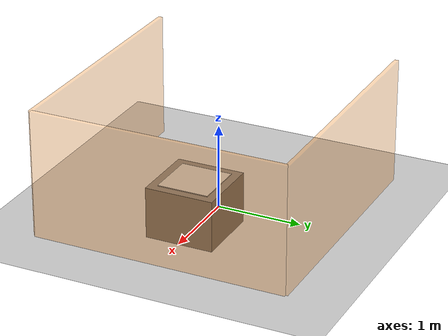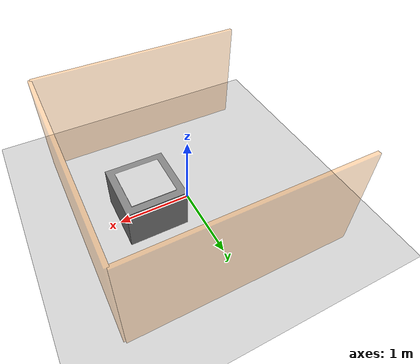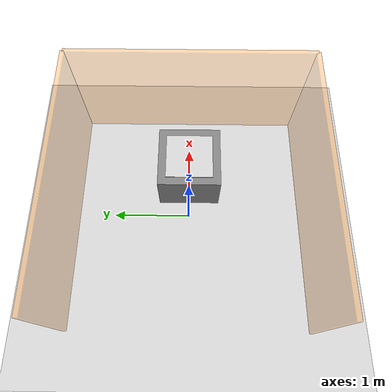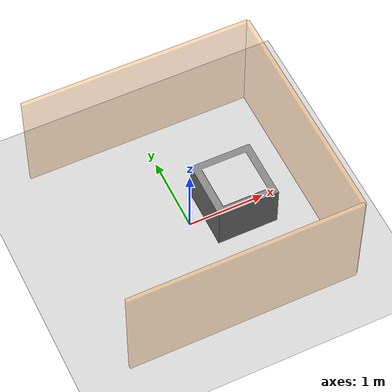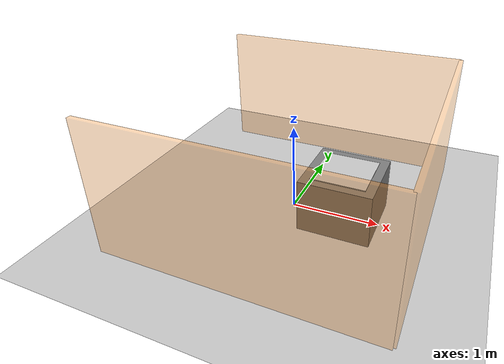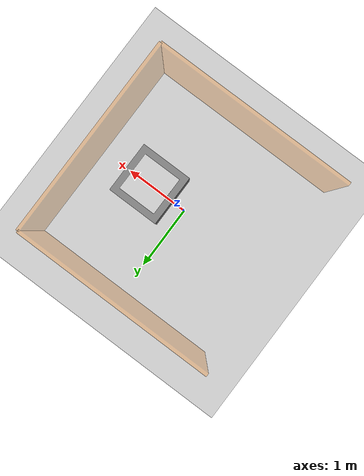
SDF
<?xml version="1.0" ?>
<sdf version="1.6">
  <world name="waam_cell">

    <!-- Physics -->
    <physics name="1ms" type="ode">
      <max_step_size>0.001</max_step_size>
      <real_time_factor>1.0</real_time_factor>
      <real_time_update_rate>1000</real_time_update_rate>
    </physics>

    <!-- Required Plugins -->
    <plugin
      filename="libignition-gazebo-physics-system.so"
      name="ignition::gazebo::systems::Physics">
    </plugin>
    <plugin
      filename="libignition-gazebo-user-commands-system.so"
      name="ignition::gazebo::systems::UserCommands">
    </plugin>
    <plugin
      filename="libignition-gazebo-scene-broadcaster-system.so"
      name="ignition::gazebo::systems::SceneBroadcaster">
    </plugin>
    <plugin
      filename="libignition-gazebo-contact-system.so"
      name="ignition::gazebo::systems::Contact">
    </plugin>

    <!-- GUI Configuration -->
    <gui fullscreen="0">
      <!-- 3D scene -->
      <plugin filename="libignition-gazebo-scene3d-system.so" name="ignition::gazebo::systems::Scene3D">
        <ignition-gui>
          <title>3D View</title>
          <property type="bool" key="showTitleBar">false</property>
          <property type="string" key="state">docked</property>
        </ignition-gui>
        <engine>ogre2</engine>
        <scene>scene</scene>
        <ambient_light>0.4 0.4 0.4</ambient_light>
        <background_color>0.8 0.8 0.8</background_color>
        <camera_pose>-3 -3 2 0 0.3 0.785</camera_pose>
      </plugin>

      <!-- World control -->
      <plugin filename="libignition-gazebo-world-control-system.so" name="ignition::gazebo::systems::WorldControl">
        <ignition-gui>
          <title>World control</title>
          <property type="bool" key="showTitleBar">false</property>
          <property type="bool" key="resizable">false</property>
          <property type="double" key="height">72</property>
          <property type="double" key="width">121</property>
          <property type="double" key="z">1</property>
          <property type="string" key="state">floating</property>
          <anchors target="3D View">
            <line own="left" target="left"/>
            <line own="bottom" target="bottom"/>
          </anchors>
        </ignition-gui>
        <play_pause>true</play_pause>
        <step>true</step>
        <start_paused>true</start_paused>
      </plugin>

      <!-- World statistics -->
      <plugin filename="libignition-gazebo-world-stats-system.so" name="ignition::gazebo::systems::WorldStats">
        <ignition-gui>
          <title>World stats</title>
          <property type="bool" key="showTitleBar">false</property>
          <property type="bool" key="resizable">false</property>
          <property type="double" key="height">110</property>
          <property type="double" key="width">290</property>
          <property type="double" key="z">1</property>
          <property type="string" key="state">floating</property>
          <anchors target="3D View">
            <line own="right" target="right"/>
            <line own="bottom" target="bottom"/>
          </anchors>
        </ignition-gui>
        <sim_time>true</sim_time>
        <real_time>true</real_time>
        <real_time_factor>true</real_time_factor>
        <iterations>true</iterations>
      </plugin>

      <!-- Entity tree -->
      <plugin filename="libignition-gazebo-entity-tree-system.so" name="ignition::gazebo::systems::EntityTree">
      </plugin>
    </gui>

    <!-- Sun -->
    <light type="directional" name="sun">
      <cast_shadows>true</cast_shadows>
      <pose>0 0 10 0 0 0</pose>
      <diffuse>0.8 0.8 0.8 1</diffuse>
      <specular>0.2 0.2 0.2 1</specular>
      <attenuation>
        <range>1000</range>
        <constant>0.9</constant>
        <linear>0.01</linear>
        <quadratic>0.001</quadratic>
      </attenuation>
      <direction>-0.5 0.1 -0.9</direction>
    </light>

    <!-- Ground Plane -->
    <model name="ground_plane">
      <static>true</static>
      <link name="link">
        <collision name="collision">
          <geometry>
            <plane>
              <normal>0 0 1</normal>
              <size>20 20</size>
            </plane>
          </geometry>
          <surface>
            <friction>
              <ode>
                <mu>100</mu>
                <mu2>50</mu2>
              </ode>
            </friction>
          </surface>
        </collision>
        <visual name="visual">
          <geometry>
            <plane>
              <normal>0 0 1</normal>
              <size>20 20</size>
            </plane>
          </geometry>
          <material>
            <ambient>0.8 0.8 0.8 1</ambient>
            <diffuse>0.8 0.8 0.8 1</diffuse>
            <specular>0.8 0.8 0.8 1</specular>
          </material>
        </visual>
      </link>
    </model>

    <!-- Workbench / Build Platform -->
    <model name="workbench">
      <static>true</static>
      <pose>0.6 0 0.3 0 0 0</pose>
      <link name="link">
        <collision name="collision">
          <geometry>
            <box>
              <size>0.8 0.8 0.6</size>
            </box>
          </geometry>
        </collision>
        <visual name="visual">
          <geometry>
            <box>
              <size>0.8 0.8 0.6</size>
            </box>
          </geometry>
          <material>
            <ambient>0.3 0.3 0.3 1</ambient>
            <diffuse>0.5 0.5 0.5 1</diffuse>
            <specular>0.1 0.1 0.1 1</specular>
          </material>
        </visual>
      </link>
    </model>

    <!-- Build Platform Top (Steel Plate) -->
    <model name="build_plate">
      <static>true</static>
      <pose>0.6 0 0.605 0 0 0</pose>
      <link name="link">
        <collision name="collision">
          <geometry>
            <box>
              <size>0.6 0.6 0.01</size>
            </box>
          </geometry>
          <surface>
            <friction>
              <ode>
                <mu>0.8</mu>
                <mu2>0.8</mu2>
              </ode>
            </friction>
          </surface>
        </collision>
        <visual name="visual">
          <geometry>
            <box>
              <size>0.6 0.6 0.01</size>
            </box>
          </geometry>
          <material>
            <ambient>0.7 0.7 0.7 1</ambient>
            <diffuse>0.8 0.8 0.8 1</diffuse>
            <specular>0.5 0.5 0.5 1</specular>
          </material>
        </visual>
      </link>
    </model>

    <!-- Safety Fence - Front -->
    <model name="fence_front">
      <static>true</static>
      <pose>1.5 0 0.75 0 0 0</pose>
      <link name="link">
        <collision name="collision">
          <geometry>
            <box>
              <size>0.05 3 1.5</size>
            </box>
          </geometry>
        </collision>
        <visual name="visual">
          <geometry>
            <box>
              <size>0.05 3 1.5</size>
            </box>
          </geometry>
          <material>
            <ambient>1 0.5 0 0.3</ambient>
            <diffuse>1 0.5 0 0.3</diffuse>
            <specular>0.1 0.1 0.1 1</specular>
          </material>
        </visual>
      </link>
    </model>

    <!-- Safety Fence - Left Side -->
    <model name="fence_left">
      <static>true</static>
      <pose>0 -1.5 0.75 0 0 0</pose>
      <link name="link">
        <collision name="collision">
          <geometry>
            <box>
              <size>3 0.05 1.5</size>
            </box>
          </geometry>
        </collision>
        <visual name="visual">
          <geometry>
            <box>
              <size>3 0.05 1.5</size>
            </box>
          </geometry>
          <material>
            <ambient>1 0.5 0 0.3</ambient>
            <diffuse>1 0.5 0 0.3</diffuse>
            <specular>0.1 0.1 0.1 1</specular>
          </material>
        </visual>
      </link>
    </model>

    <!-- Safety Fence - Right Side -->
    <model name="fence_right">
      <static>true</static>
      <pose>0 1.5 0.75 0 0 0</pose>
      <link name="link">
        <collision name="collision">
          <geometry>
            <box>
              <size>3 0.05 1.5</size>
            </box>
          </geometry>
        </collision>
        <visual name="visual">
          <geometry>
            <box>
              <size>3 0.05 1.5</size>
            </box>
          </geometry>
          <material>
            <ambient>1 0.5 0 0.3</ambient>
            <diffuse>1 0.5 0 0.3</diffuse>
            <specular>0.1 0.1 0.1 1</specular>
          </material>
        </visual>
      </link>
    </model>

    <!-- Lighting for welding area -->
    <light type="point" name="work_light">
      <pose>0.6 0 2.0 0 0 0</pose>
      <diffuse>1 1 1 1</diffuse>
      <specular>0.5 0.5 0.5 1</specular>
      <attenuation>
        <range>5</range>
        <constant>0.5</constant>
        <linear>0.01</linear>
        <quadratic>0.001</quadratic>
      </attenuation>
      <cast_shadows>false</cast_shadows>
    </light>

  </world>
</sdf>
